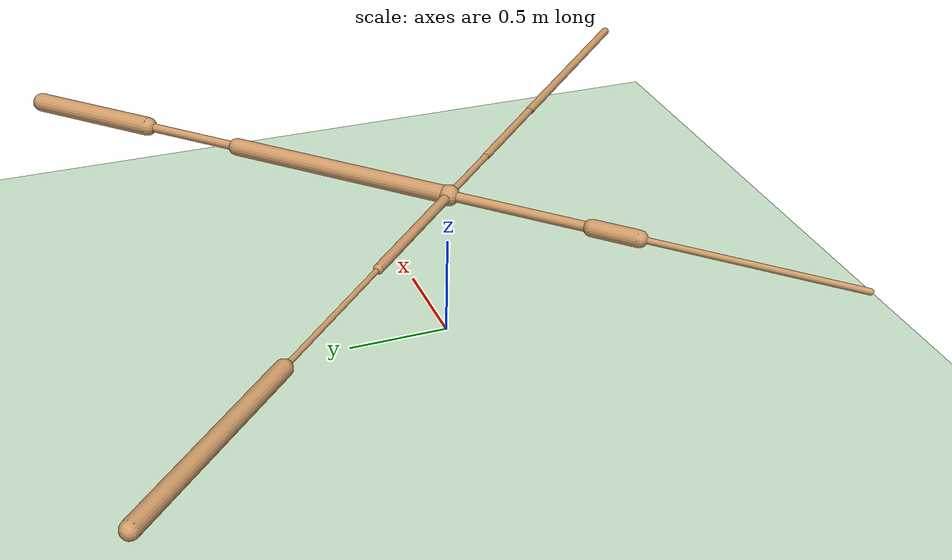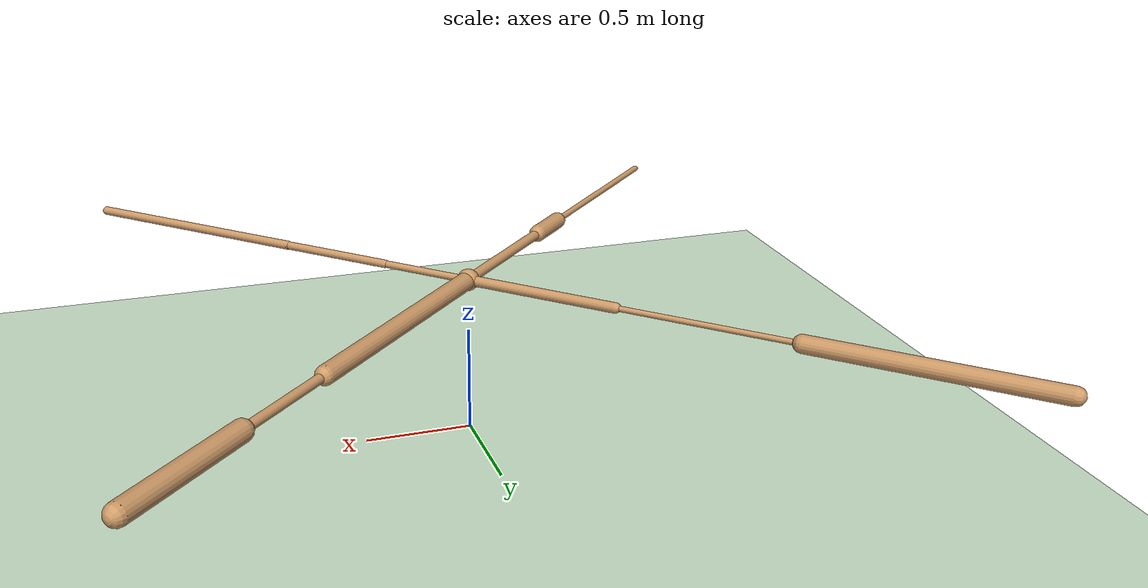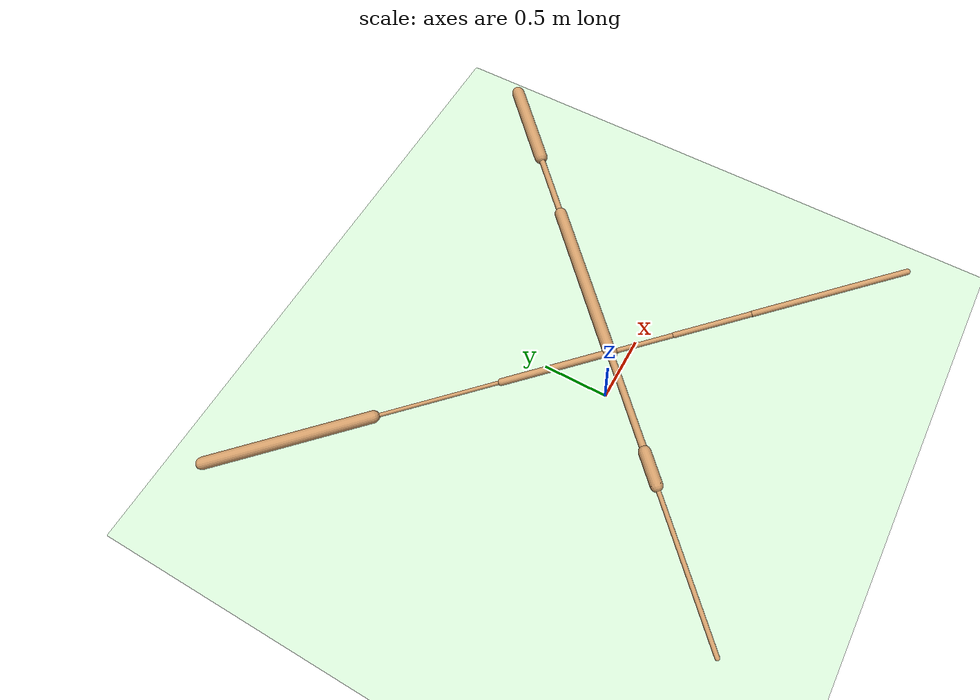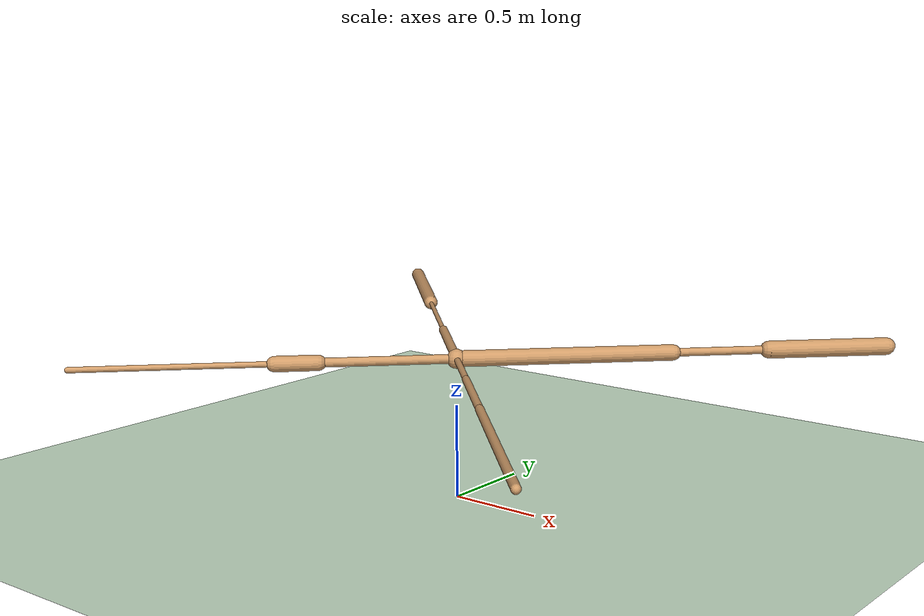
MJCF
<mujoco model="ant">
  <compiler angle="degree" coordinate="local" inertiafromgeom="true" />
  <option integrator="RK4" timestep="0.01" />
  <custom>
    <numeric data="0.0 0.0 0.55 1.0 0.0 0.0 0.0 0.0 1.0 0.0 -1.0 0.0 -1.0 0.0 1.0" name="init_qpos" />
  </custom>
  <default>
    <joint armature="1" damping="1" limited="true" />
    <geom conaffinity="0" condim="3" density="5.0" friction="1 0.5 0.5" margin="0.01" rgba="0.8 0.6 0.4 1" />
  </default>
  <asset>
    <texture builtin="gradient" height="100" rgb1="1 1 1" rgb2="0 0 0" type="skybox" width="100" />
    <texture builtin="flat" height="1278" mark="cross" markrgb="1 1 1" name="texgeom" random="0.01" rgb1="0.8 0.6 0.4" rgb2="0.8 0.6 0.4" type="cube" width="127" />
    <texture builtin="checker" height="100" name="texplane" rgb1="0 0 0" rgb2="0.8 0.8 0.8" type="2d" width="100" />
    <material name="MatPlane" reflectance="0.5" shininess="1" specular="1" texrepeat="60 60" texture="texplane" />
    <material name="geom" texture="texgeom" texuniform="true" />
  </asset>
  <worldbody>
    <light cutoff="100" diffuse="1 1 1" dir="-0 0 -1.3" directional="true" exponent="1" pos="0 0 1.3" specular=".1 .1 .1" />
    <geom conaffinity="1" condim="3" material="MatPlane" name="floor" pos="0 0 0" rgba="0.8 0.9 0.8 1" size="40 40 40" type="plane" />
    <body name="torso" pos="0 0 0.75">
      <camera name="track" mode="trackcom" pos="0 -11 5" xyaxes="1 0 0 0 0.5 1" />
      <geom name="torso_geom" pos="0 0 0" size="0.05111619085073471" type="sphere" />
      <joint armature="0" damping="0" limited="false" margin="0.01" name="root" pos="0 0 0" type="free" />
      <body name="front_left_leg" pos="0 0 0">
        <geom fromto="0 0 0 0.8112098574638367 0.8112098574638367 0" name="aux_1_geom" size="0.042625296860933304" type="capsule" />
        <body name="aux_1" pos="0.8112098574638367 0.8112098574638367 0">
          <joint axis="0 0 1" name="hip_1" pos="0.0 0.0 0.0" range="-30 30" type="hinge" />
          <geom fromto="0 0 0 0.3710559904575348 0.3710559904575348 0" name="left_leg_geom" size="0.021598055958747864" type="capsule" />
          <body name="left_leg_geom_aux" pos="0.3710559904575348 0.3710559904575348 0">
            <joint axis="-1 1 0" name="ankle_1" pos="0.0 0.0 0.0" range="30 70" type="hinge" />
            <geom fromto="0 0 0 0.46126019954681396 0.46126019954681396 0" name="left_ankle_geom" size="0.04698017239570618" type="capsule" />
          </body>
        </body>
      </body>
      <body name="front_right_leg" pos="0 0 0">
        <geom fromto="0 0 0 -0.5186923742294312 0.5186923742294312 0" name="aux_2_geom" size="0.02416813373565674" type="capsule" />
        <body name="aux_2" pos="-0.5186923742294312 0.5186923742294312 0">
          <joint axis="0 0 1" name="hip_2" pos="0.0 0.0 0.0" range="-30 30" type="hinge" />
          <geom fromto="0 0 0 -0.5889898538589478 0.5889898538589478 0" name="right_leg_geom" size="0.01289832778275013" type="capsule" />
          <body name="right_leg_geom_aux" pos="-0.5889898538589478 0.5889898538589478 0">
            <joint axis="1 1 0" name="ankle_2" pos="0.0 0.0 0.0" range="-70 -30" type="hinge" />
            <geom fromto="0 0 0 -0.7523624897003174 0.7523624897003174 0" name="right_ankle_geom" size="0.0404386967420578" type="capsule" />
          </body>
        </body>
      </body>
      <body name="back_leg" pos="0 0 0">
        <geom fromto="0 0 0 -0.501375675201416 -0.501375675201416 0" name="aux_3_geom" size="0.024193372577428818" type="capsule" />
        <body name="aux_3" pos="-0.501375675201416 -0.501375675201416 0">
          <joint axis="0 0 1" name="hip_3" pos="0.0 0.0 0.0" range="-30 30" type="hinge" />
          <geom fromto="0 0 0 -0.1586032509803772 -0.1586032509803772 0" name="back_leg_geom" size="0.04109042137861252" type="capsule" />
          <body name="back_leg_geom_aux" pos="-0.1586032509803772 -0.1586032509803772 0">
            <joint axis="-1 1 0" name="ankle_3" pos="0.0 0.0 0.0" range="-70 -30" type="hinge" />
            <geom fromto="0 0 0 -0.7233703136444092 -0.7233703136444092 0" name="third_ankle_geom" size="0.015192031860351562" type="capsule" />
          </body>
        </body>
      </body>
      <body name="right_back_leg" pos="0 0 0">
        <geom fromto="0 0 0 0.3149135708808899 -0.3149135708808899 0" name="aux_4_geom" size="0.016492176800966263" type="capsule" />
        <body name="aux_4" pos="0.3149135708808899 -0.3149135708808899 0">
          <joint axis="0 0 1" name="hip_4" pos="0.0 0.0 0.0" range="-30 30" type="hinge" />
          <geom fromto="0 0 0 0.3957168757915497 -0.3957168757915497 0" name="rightback_leg_geom" size="0.01908120885491371" type="capsule" />
          <body name="rightback_leg_geom_aux" pos="0.3957168757915497 -0.3957168757915497 0">
            <joint axis="1 1 0" name="ankle_4" pos="0.0 0.0 0.0" range="30 70" type="hinge" />
            <geom fromto="0 0 0 0.8121013641357422 -0.8121013641357422 0" name="fourth_ankle_geom" size="0.020846737548708916" type="capsule" />
          </body>
        </body>
      </body>
    </body>
  </worldbody>
  <actuator>
    <motor ctrllimited="true" ctrlrange="-1.0 1.0" joint="hip_4" gear="150" />
    <motor ctrllimited="true" ctrlrange="-1.0 1.0" joint="ankle_4" gear="150" />
    <motor ctrllimited="true" ctrlrange="-1.0 1.0" joint="hip_1" gear="150" />
    <motor ctrllimited="true" ctrlrange="-1.0 1.0" joint="ankle_1" gear="150" />
    <motor ctrllimited="true" ctrlrange="-1.0 1.0" joint="hip_2" gear="150" />
    <motor ctrllimited="true" ctrlrange="-1.0 1.0" joint="ankle_2" gear="150" />
    <motor ctrllimited="true" ctrlrange="-1.0 1.0" joint="hip_3" gear="150" />
    <motor ctrllimited="true" ctrlrange="-1.0 1.0" joint="ankle_3" gear="150" />
  </actuator>
</mujoco>
